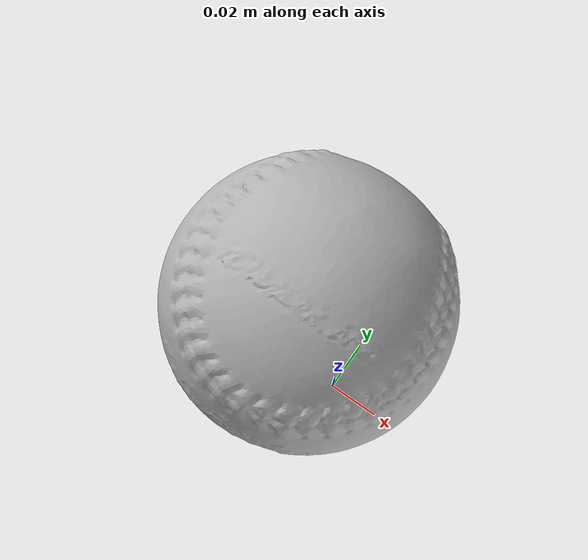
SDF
<?xml version='1.0'?>
<sdf version="1.4">
  <model name="softball">
    <static>false</static>
    <link name="link">
      <inertial>
        <pose>-0.019649794100610775 0.010882535862384668 0.04681713398392472 0.6197435598668299 1.4692508307593815 -0.8068714957007482</pose>
        <mass>0.0004626568501712982</mass>
        <inertia>
          <ixx>4.2804008442274933e-07</ixx>
          <ixy>6.950362824423692e-24</ixy>
          <ixz>3.3939687913861413e-23</ixz>
          <iyy>4.265061770013524e-07</iyy>
          <iyz>1.0576325446187278e-24</iyz>
          <izz>4.238996264573921e-07</izz>
        </inertia>
      </inertial>
      <collision name="collision">
        <geometry>
          <mesh>
            <!-- Use a downsampled mesh for collisions -->
            <uri>model://054_softball/google_16k/054_softball.obj</uri>
            </mesh>
        </geometry>
        <surface>
          <friction>
            <ode>
              <mu>0.9</mu>
              <mu2>0.9</mu2>
            </ode>
          </friction>
          <contact>
            <ode>
              <kp>1000000000000.0</kp>
              <kd>1</kd>
              <min_depth>0.0001</min_depth>
              <max_vel>0.01</max_vel>
            </ode>
          </contact>
          <bounce>
            <restitution_coefficient>0.1</restitution_coefficient>
            <threshold>1000.0</threshold>
          </bounce>
        </surface>
      </collision>
      <visual name="visual">
        <geometry>
          <mesh>
            <uri>model://054_softball/google_16k/054_softball.dae</uri>
            </mesh>
        </geometry>
      </visual>
    </link>
  </model>
</sdf>
